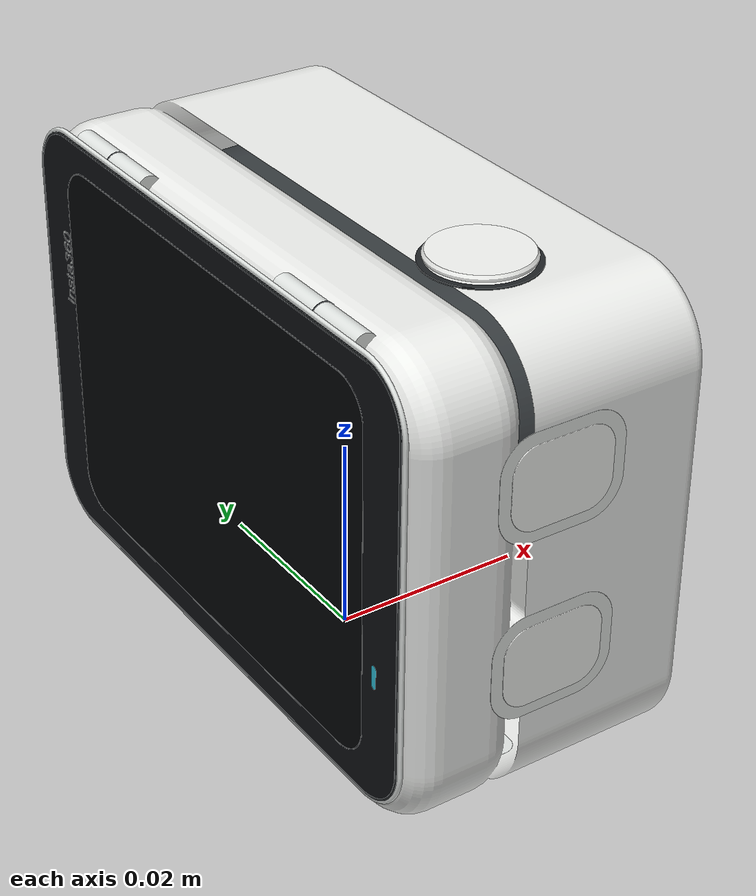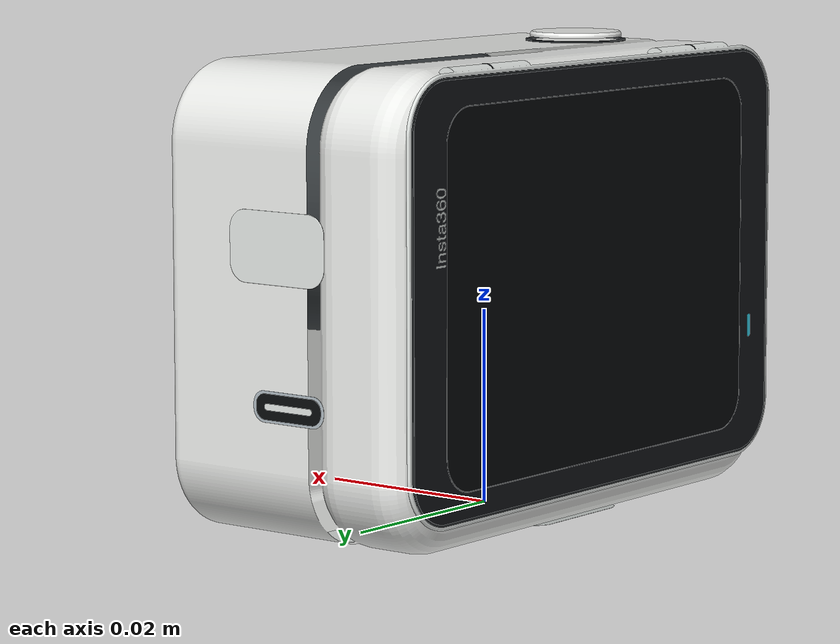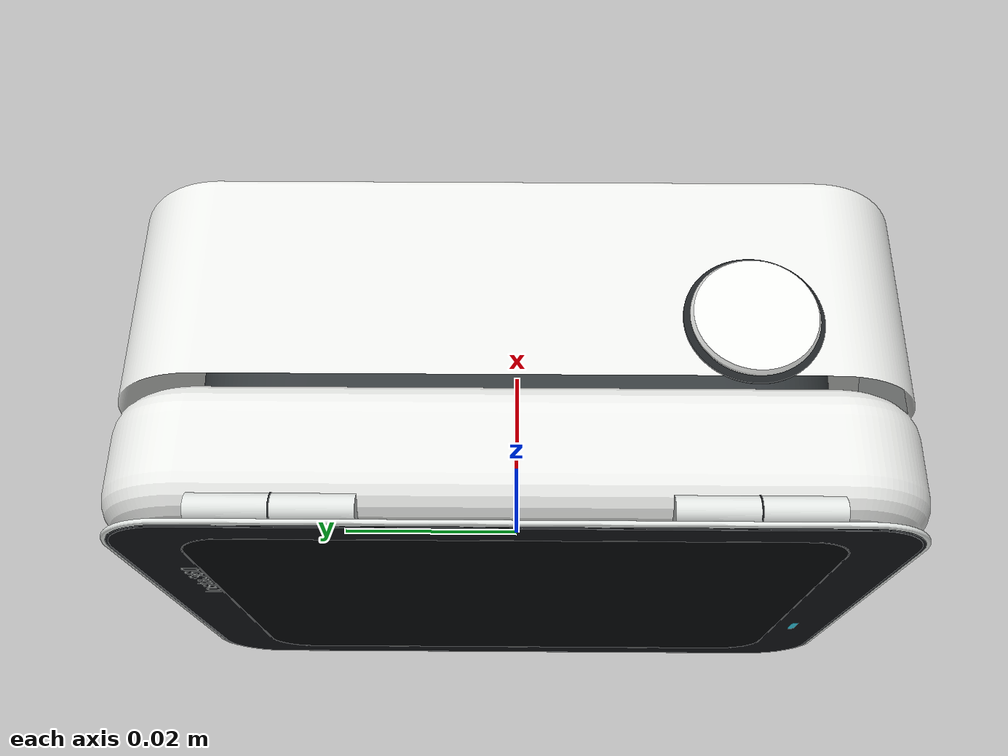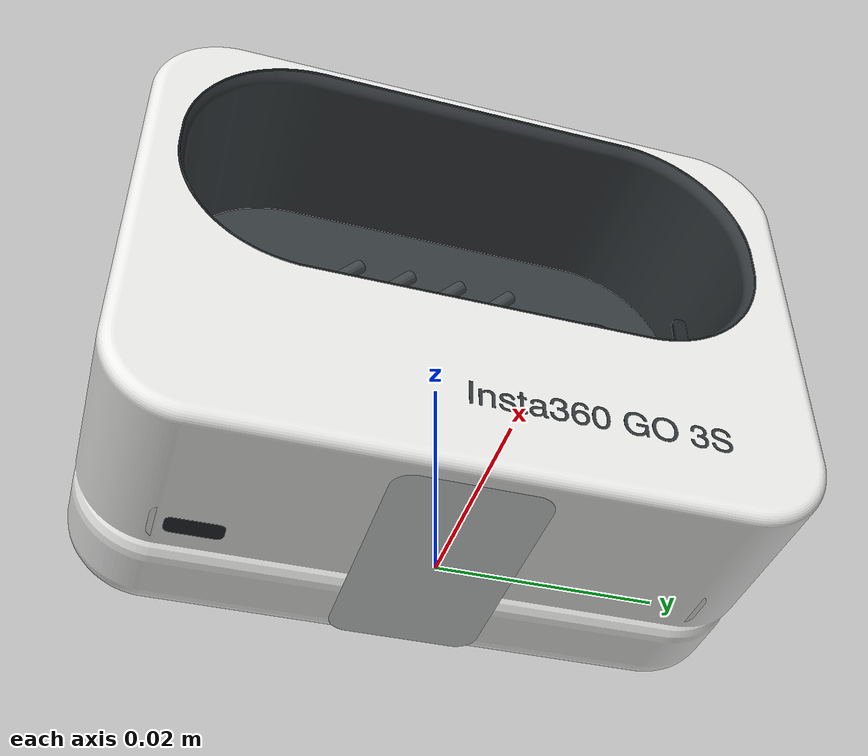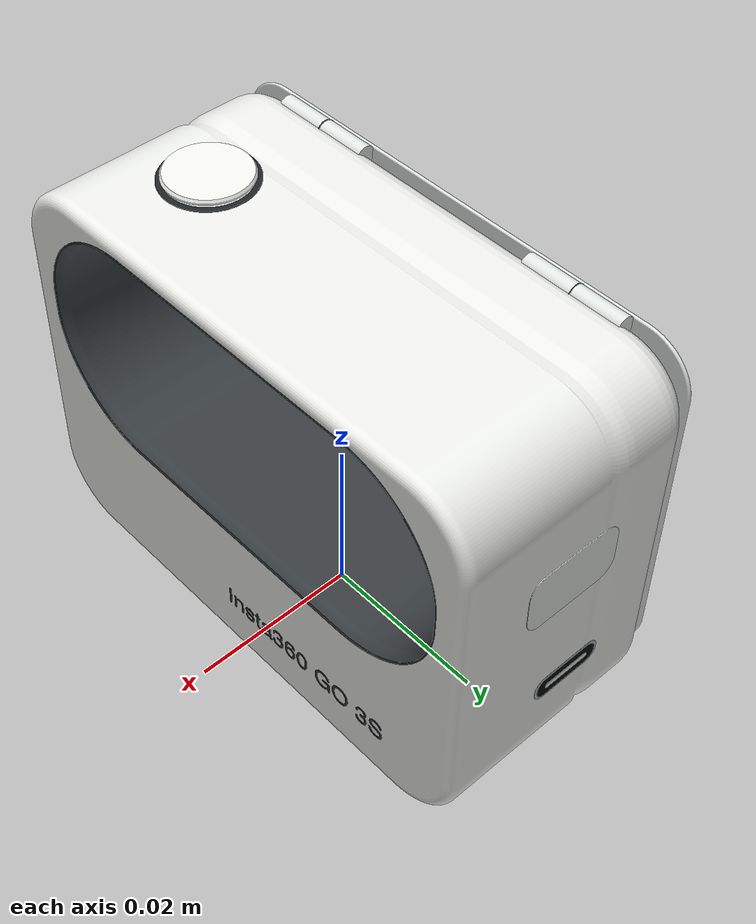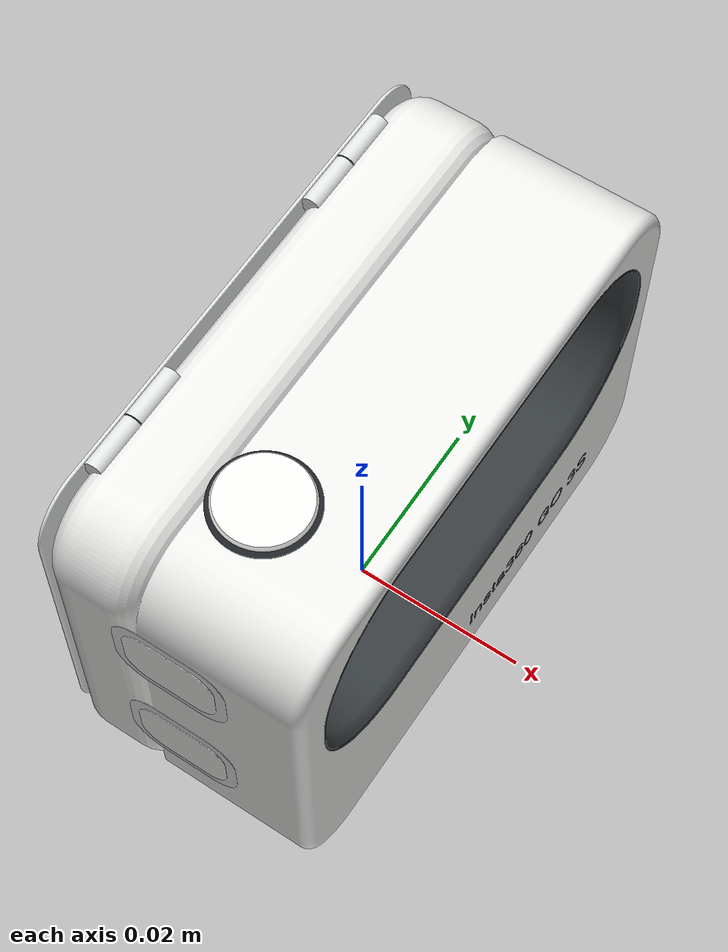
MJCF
<?xml version='1.0' encoding='utf-8'?>
<mujoco model="insta360_go3_action_pod">
  <!--Independent approximate geometry; fixed sites are geometric references, not calibrated optical frames.-->
  <compiler angle="radian" inertiafromgeom="false" strippath="false" />
  <option timestep="0.002" gravity="0 0 -9.81" />
  <asset>
    <mesh name="go3_action_pod_visual_mesh_0" file="../assets/meshes/visual/front_polymer.obj" scale="1 1 1" inertia="shell" />
    <mesh name="go3_action_pod_visual_mesh_1" file="../assets/meshes/visual/gasket.obj" scale="1 1 1" inertia="shell" />
    <mesh name="go3_action_pod_visual_mesh_2" file="../assets/meshes/visual/gold.obj" scale="1 1 1" inertia="shell" />
    <mesh name="go3_action_pod_visual_mesh_3" file="../assets/meshes/visual/housing.obj" scale="1 1 1" inertia="shell" />
    <mesh name="go3_action_pod_visual_mesh_4" file="../assets/meshes/visual/print.obj" scale="1 1 1" inertia="shell" />
    <mesh name="go3_action_pod_visual_mesh_5" file="../assets/meshes/visual/rear_polymer.obj" scale="1 1 1" inertia="shell" />
    <mesh name="go3_action_pod_visual_mesh_6" file="../assets/meshes/visual/rib.obj" scale="1 1 1" inertia="shell" />
    <mesh name="go3_action_pod_visual_mesh_7" file="../assets/meshes/visual/screen.obj" scale="1 1 1" inertia="shell" />
    <mesh name="go3_action_pod_visual_mesh_8" file="../assets/meshes/visual/screen_border.obj" scale="1 1 1" inertia="shell" />
    <mesh name="go3_action_pod_visual_mesh_9" file="../assets/meshes/visual/silver.obj" scale="1 1 1" inertia="shell" />
    <mesh name="go3_action_pod_visual_mesh_10" file="../assets/meshes/visual/slot.obj" scale="1 1 1" inertia="shell" />
    <mesh name="go3_action_pod_visual_mesh_11" file="../assets/meshes/visual/status.obj" scale="1 1 1" inertia="shell" />
    <mesh name="go3_action_pod_visual_mesh_12" file="../assets/meshes/visual/subtle_print.obj" scale="1 1 1" inertia="shell" />
    <mesh name="go3_action_pod_visual_mesh_13" file="../assets/meshes/visual/tray.obj" scale="1 1 1" inertia="shell" />
    <mesh name="go3_action_pod_collision_mesh_0" file="../assets/meshes/collision/body.stl" scale="1 1 1" inertia="convex" />
  </asset>
  <worldbody>
    <body name="go3_action_pod_link">
      <inertial pos="0 0 0.0238" mass="0.0963" diaginertia="5.054153025e-05 2.516648025e-05 3.93425625e-05" quat="1 0 0 0" />
      <geom name="go3_action_pod_visual_0" type="mesh" mesh="go3_action_pod_visual_mesh_0" pos="0 0 0" quat="1 0 0 0" density="0" group="2" contype="0" conaffinity="0" rgba="0.93 0.935 0.925 1" />
      <geom name="go3_action_pod_visual_1" type="mesh" mesh="go3_action_pod_visual_mesh_1" pos="0 0 0" quat="1 0 0 0" density="0" group="2" contype="0" conaffinity="0" rgba="0.12 0.135 0.145 1" />
      <geom name="go3_action_pod_visual_2" type="mesh" mesh="go3_action_pod_visual_mesh_2" pos="0 0 0" quat="1 0 0 0" density="0" group="2" contype="0" conaffinity="0" rgba="0.72 0.51 0.17 1" />
      <geom name="go3_action_pod_visual_3" type="mesh" mesh="go3_action_pod_visual_mesh_3" pos="0 0 0" quat="1 0 0 0" density="0" group="2" contype="0" conaffinity="0" rgba="0.91 0.915 0.905 1" />
      <geom name="go3_action_pod_visual_4" type="mesh" mesh="go3_action_pod_visual_mesh_4" pos="0 0 0" quat="1 0 0 0" density="0" group="2" contype="0" conaffinity="0" rgba="0.19 0.21 0.22 1" />
      <geom name="go3_action_pod_visual_5" type="mesh" mesh="go3_action_pod_visual_mesh_5" pos="0 0 0" quat="1 0 0 0" density="0" group="2" contype="0" conaffinity="0" rgba="0.87 0.885 0.875 1" />
      <geom name="go3_action_pod_visual_6" type="mesh" mesh="go3_action_pod_visual_mesh_6" pos="0 0 0" quat="1 0 0 0" density="0" group="2" contype="0" conaffinity="0" rgba="0.255 0.277 0.285 1" />
      <geom name="go3_action_pod_visual_7" type="mesh" mesh="go3_action_pod_visual_mesh_7" pos="0 0 0" quat="1 0 0 0" density="0" group="2" contype="0" conaffinity="0" rgba="0.019 0.027 0.035 1" />
      <geom name="go3_action_pod_visual_8" type="mesh" mesh="go3_action_pod_visual_mesh_8" pos="0 0 0" quat="1 0 0 0" density="0" group="2" contype="0" conaffinity="0" rgba="0.065 0.075 0.086 1" />
      <geom name="go3_action_pod_visual_9" type="mesh" mesh="go3_action_pod_visual_mesh_9" pos="0 0 0" quat="1 0 0 0" density="0" group="2" contype="0" conaffinity="0" rgba="0.67 0.71 0.735 1" />
      <geom name="go3_action_pod_visual_10" type="mesh" mesh="go3_action_pod_visual_mesh_10" pos="0 0 0" quat="1 0 0 0" density="0" group="2" contype="0" conaffinity="0" rgba="0.025 0.033 0.039 1" />
      <geom name="go3_action_pod_visual_11" type="mesh" mesh="go3_action_pod_visual_mesh_11" pos="0 0 0" quat="1 0 0 0" density="0" group="2" contype="0" conaffinity="0" rgba="0.2 0.79 0.89 1" />
      <geom name="go3_action_pod_visual_12" type="mesh" mesh="go3_action_pod_visual_mesh_12" pos="0 0 0" quat="1 0 0 0" density="0" group="2" contype="0" conaffinity="0" rgba="0.78 0.8 0.79 1" />
      <geom name="go3_action_pod_visual_13" type="mesh" mesh="go3_action_pod_visual_mesh_13" pos="0 0 0" quat="1 0 0 0" density="0" group="2" contype="0" conaffinity="0" rgba="0.21 0.23 0.24 1" />
      <geom name="go3_action_pod_collision_0" type="mesh" mesh="go3_action_pod_collision_mesh_0" pos="0 0 0" quat="1 0 0 0" density="0" group="3" contype="1" conaffinity="1" rgba="0 0 0 0" />
      <site name="go3_action_pod_mount" pos="0 0 0" quat="1 0 0 0" type="sphere" size="0.001" group="4" rgba="0 0 0 0" />
    </body>
  </worldbody>
</mujoco>
